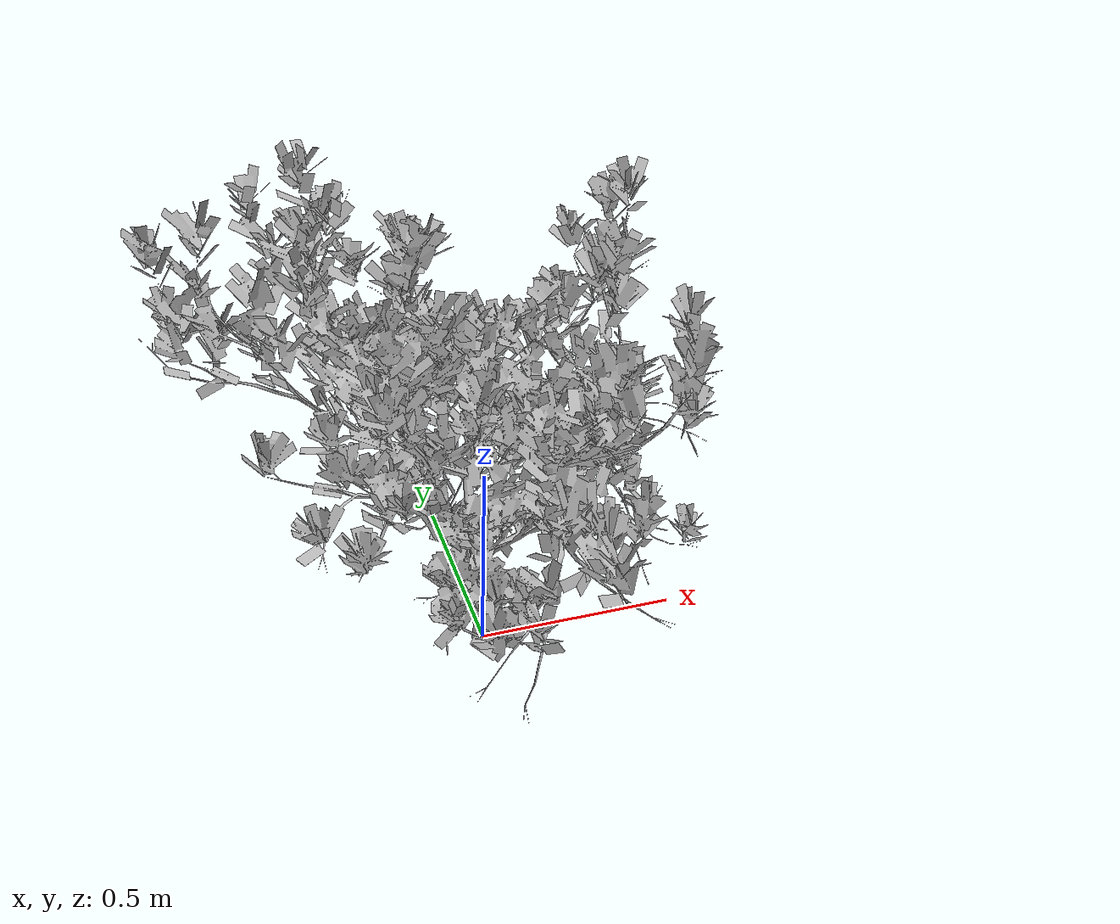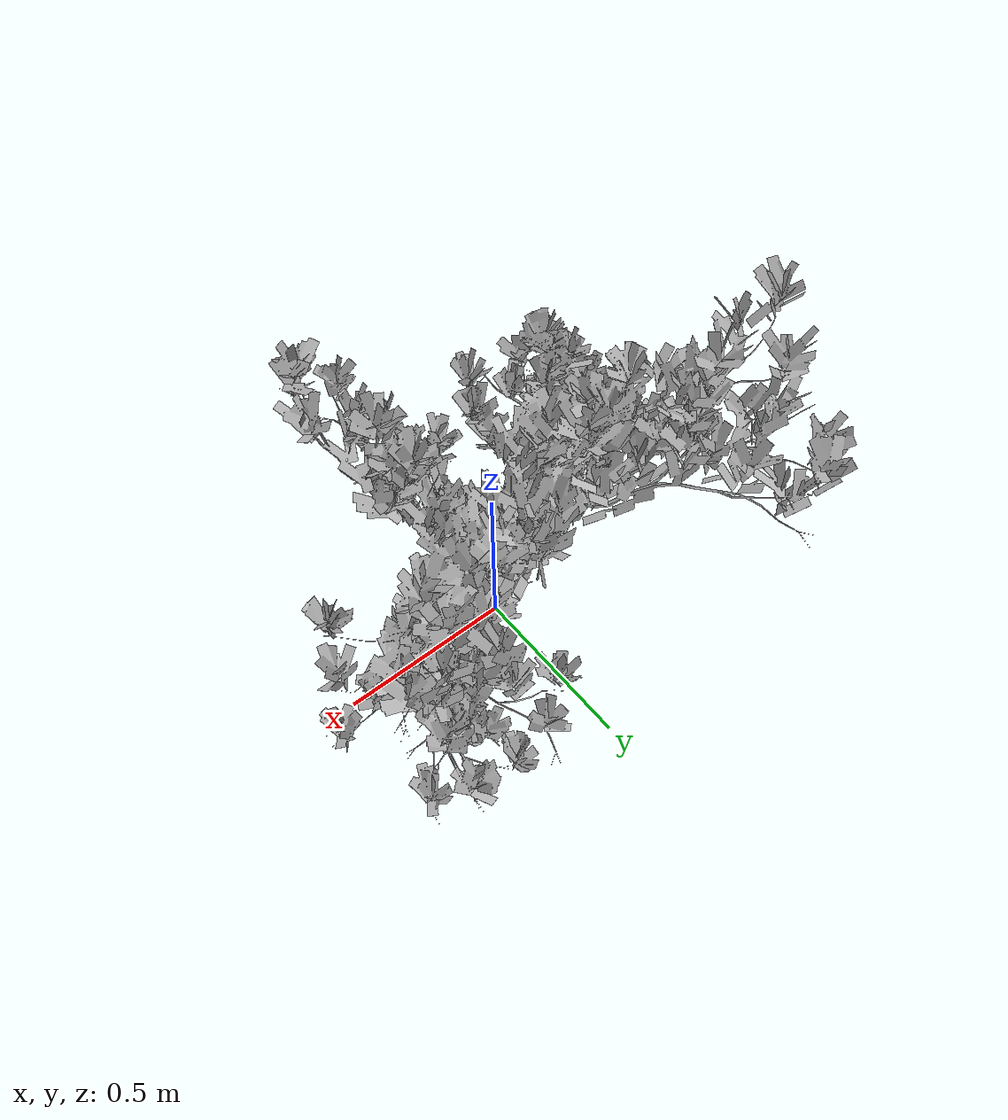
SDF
<?xml version="1.0" ?>
<sdf version="1.6">
  <model name="bush">
    <static>true</static>
    <link name="link">
      <visual name="visual">
        <geometry>
          <mesh>
            <uri>model://bush/Untitled.obj</uri>
            <scale>0.009147 0.009147 0.009147</scale>
          </mesh>
        </geometry>
      </visual>
                  <collision name="collision">
        <geometry>
          <mesh>
            <uri>model://bush/Untitled.obj</uri>
            <scale>0.009147 0.009147 0.009147</scale>
          </mesh>
        </geometry>
      </collision>
    </link>
  </model>
</sdf>
